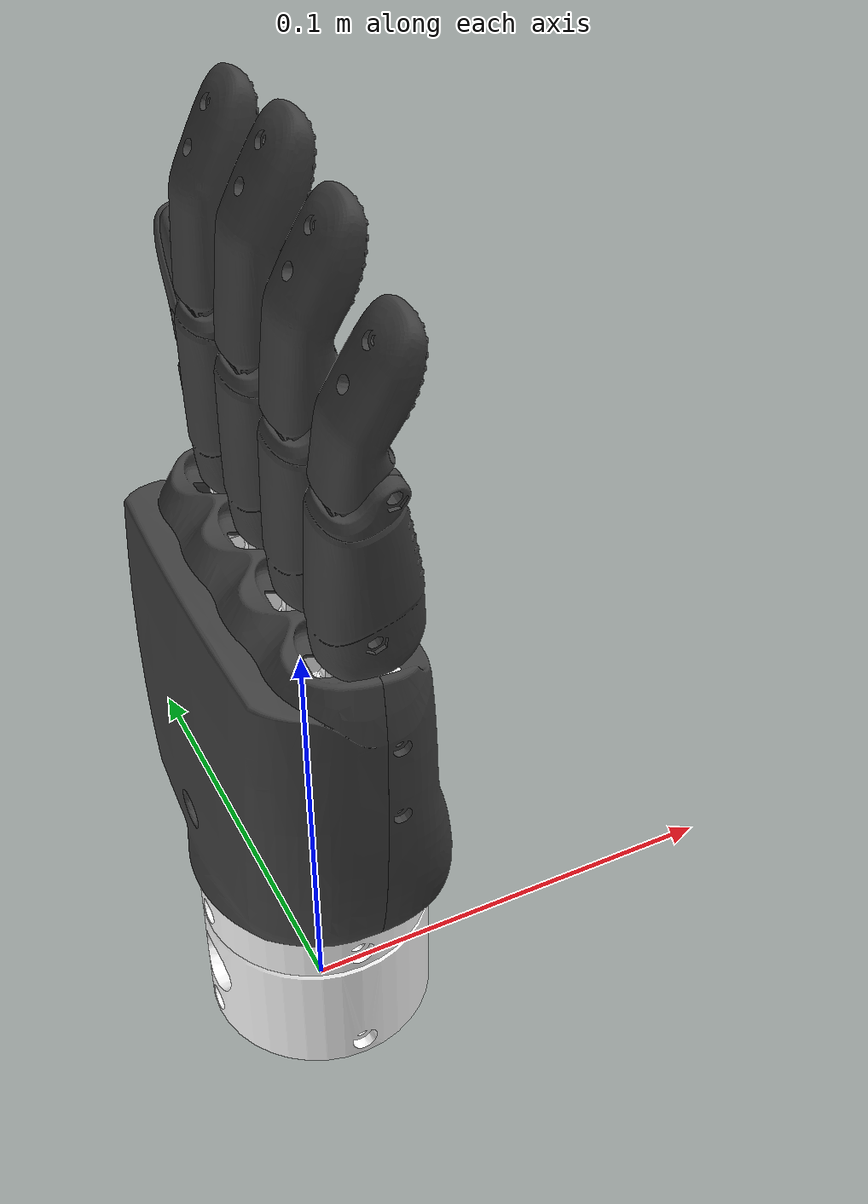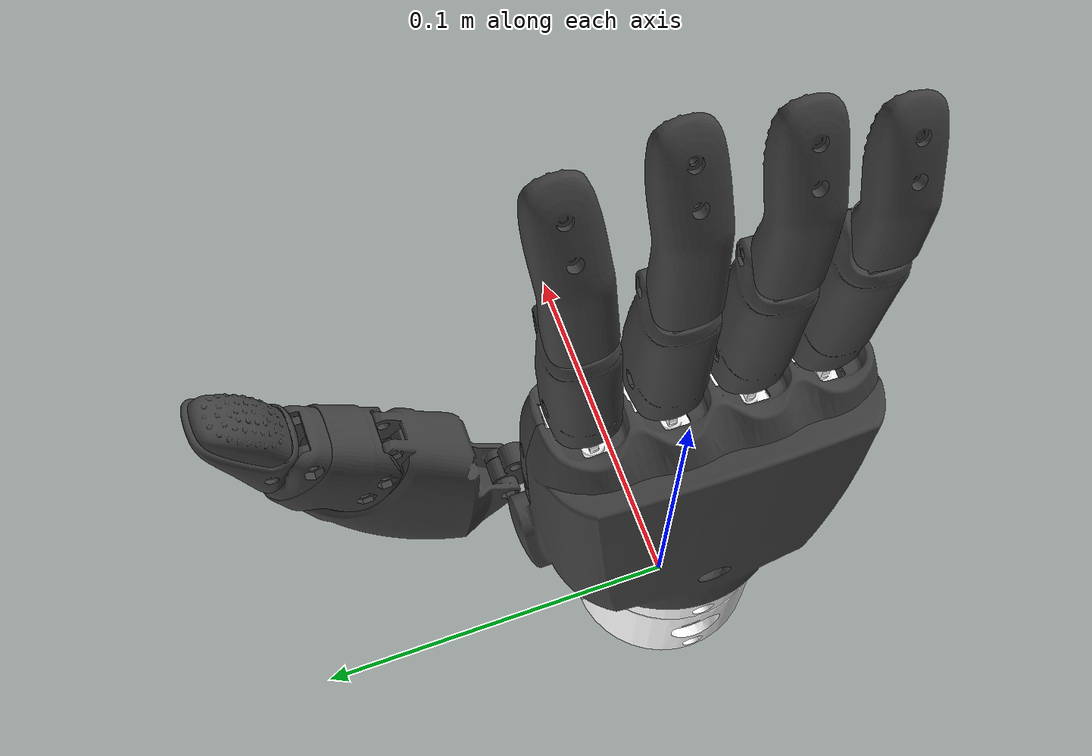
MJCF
<mujoco model="inspire_rh56f1_right">
  <compiler angle="radian" meshdir="assets_right" autolimits="true"/>

  <asset>
    <mesh file="base_link.obj"/>
    <mesh file="palm_1.obj"/>
    <mesh file="palm_2.obj"/>
    <mesh file="palm_2_collision_0.obj"/>
    <mesh file="palm_2_collision_1.obj"/>
    <mesh file="palm_2_collision_2.obj"/>
    <mesh file="palm_2_collision_3.obj"/>
    <mesh file="palm_2_collision_4.obj"/>
    <mesh file="palm_2_collision_5.obj"/>
    <mesh file="palm_2_collision_6.obj"/>
    <mesh file="palm_2_collision_7.obj"/>
    <mesh file="palm_2_collision_8.obj"/>
    <mesh file="palm_2_collision_9.obj"/>
    <mesh file="palm_2_collision_10.obj"/>
    <mesh file="palm_2_collision_11.obj"/>
    <mesh file="palm_2_collision_12.obj"/>
    <mesh file="palm_2_collision_13.obj"/>
    <mesh file="palm_2_collision_14.obj"/>
    <mesh file="palm_2_collision_15.obj"/>
    <mesh file="palm_2_collision_16.obj"/>
    <mesh file="palm_2_collision_17.obj"/>
    <mesh file="palm_2_collision_18.obj"/>
    <mesh file="palm_2_collision_19.obj"/>
    <mesh file="palm_2_collision_20.obj"/>
    <mesh file="palm_2_collision_21.obj"/>
    <mesh file="palm_2_collision_22.obj"/>
    <mesh file="palm_2_collision_23.obj"/>
    <mesh file="palm_2_collision_24.obj"/>
    <mesh file="palm_2_collision_25.obj"/>
    <mesh file="palm_2_collision_26.obj"/>
    <mesh file="palm_2_collision_27.obj"/>
    <mesh file="palm_2_collision_28.obj"/>
    <mesh file="palm_2_collision_29.obj"/>
    <mesh file="palm_2_collision_30.obj"/>
    <mesh file="palm_2_collision_31.obj"/>
    <mesh file="palm_2_collision_32.obj"/>
    <mesh file="palm_2_collision_33.obj"/>
    <mesh file="palm_2_collision_34.obj"/>
    <mesh file="palm_2_collision_35.obj"/>
    <mesh file="palm_2_collision_36.obj"/>
    <mesh file="palm_2_collision_37.obj"/>
    <mesh file="palm_2_collision_38.obj"/>
    <mesh file="palm_2_collision_39.obj"/>
    <mesh file="palm_2_collision_40.obj"/>
    <mesh file="palm_2_collision_41.obj"/>
    <mesh file="palm_2_collision_42.obj"/>
    <mesh file="palm_2_collision_43.obj"/>
    <mesh file="palm_2_collision_44.obj"/>
    <mesh file="palm_2_collision_45.obj"/>
    <mesh file="palm_2_collision_46.obj"/>
    <mesh file="palm_2_collision_47.obj"/>
    <mesh file="palm_2_collision_48.obj"/>
    <mesh file="palm_2_collision_49.obj"/>
    <mesh file="palm_2_collision_50.obj"/>
    <mesh file="palm_2_collision_51.obj"/>
    <mesh file="palm_2_collision_52.obj"/>
    <mesh file="palm_2_collision_53.obj"/>
    <mesh file="palm_2_collision_54.obj"/>
    <mesh file="palm_2_collision_55.obj"/>
    <mesh file="palm_2_collision_56.obj"/>
    <mesh file="palm_2_collision_57.obj"/>
    <mesh file="palm_2_collision_58.obj"/>
    <mesh file="palm_2_collision_59.obj"/>
    <mesh file="palm_2_collision_60.obj"/>
    <mesh file="palm_2_collision_61.obj"/>
    <mesh file="palm_2_collision_62.obj"/>
    <mesh file="palm_2_collision_63.obj"/>
    <mesh file="palm_2_collision_64.obj"/>
    <mesh file="palm_2_collision_65.obj"/>
    <mesh file="palm_2_collision_66.obj"/>
    <mesh file="palm_2_collision_67.obj"/>
    <mesh file="palm_2_collision_68.obj"/>
    <mesh file="palm_2_collision_69.obj"/>
    <mesh file="palm_2_collision_70.obj"/>
    <mesh file="palm_2_collision_71.obj"/>
    <mesh file="palm_2_collision_72.obj"/>
    <mesh file="palm_2_collision_73.obj"/>
    <mesh file="palm_2_collision_74.obj"/>
    <mesh file="palm_2_collision_75.obj"/>
    <mesh file="palm_2_collision_76.obj"/>
    <mesh file="palm_2_collision_77.obj"/>
    <mesh file="palm_2_collision_78.obj"/>
    <mesh file="palm_2_collision_79.obj"/>
    <mesh file="palm_2_collision_80.obj"/>
    <mesh file="palm_2_collision_81.obj"/>
    <mesh file="palm_2_collision_82.obj"/>
    <mesh file="palm_2_collision_83.obj"/>
    <mesh file="palm_2_collision_84.obj"/>
    <mesh file="palm_2_collision_85.obj"/>
    <mesh file="palm_2_collision_86.obj"/>
    <mesh file="palm_2_collision_87.obj"/>
    <mesh file="palm_2_collision_88.obj"/>
    <mesh file="palm_2_collision_89.obj"/>
    <mesh file="palm_2_collision_90.obj"/>
    <mesh file="palm_2_collision_91.obj"/>
    <mesh file="palm_2_collision_92.obj"/>
    <mesh file="palm_2_collision_93.obj"/>
    <mesh file="palm_2_collision_94.obj"/>
    <mesh file="palm_2_collision_95.obj"/>
    <mesh file="palm_2_collision_96.obj"/>
    <mesh file="palm_2_collision_97.obj"/>
    <mesh file="palm_2_collision_98.obj"/>
    <mesh file="palm_2_collision_99.obj"/>
    <mesh file="palm_2_collision_100.obj"/>
    <mesh file="palm_2_collision_101.obj"/>
    <mesh file="palm_2_collision_102.obj"/>
    <mesh file="palm_2_collision_103.obj"/>
    <mesh file="palm_2_collision_104.obj"/>
    <mesh file="palm_2_collision_105.obj"/>
    <mesh file="palm_2_collision_106.obj"/>
    <mesh file="palm_2_collision_107.obj"/>
    <mesh file="palm_2_collision_108.obj"/>
    <mesh file="palm_2_collision_109.obj"/>
    <mesh file="palm_2_collision_110.obj"/>
    <mesh file="palm_2_collision_111.obj"/>
    <mesh file="palm_2_collision_112.obj"/>
    <mesh file="palm_2_collision_113.obj"/>
    <mesh file="palm_2_collision_114.obj"/>
    <mesh file="palm_2_collision_115.obj"/>
    <mesh file="palm_2_collision_116.obj"/>
    <mesh file="palm_2_collision_117.obj"/>
    <mesh file="palm_2_collision_118.obj"/>
    <mesh file="palm_2_collision_119.obj"/>
    <mesh file="palm_2_collision_120.obj"/>
    <mesh file="palm_2_collision_121.obj"/>
    <mesh file="palm_2_collision_122.obj"/>
    <mesh file="palm_2_collision_123.obj"/>
    <mesh file="palm_2_collision_124.obj"/>
    <mesh file="palm_2_collision_125.obj"/>
    <mesh file="palm_2_collision_126.obj"/>
    <mesh file="palm_2_collision_127.obj"/>
    <mesh file="palm_2_collision_128.obj"/>
    <mesh file="palm_2_collision_129.obj"/>
    <mesh file="palm_2_collision_130.obj"/>
    <mesh file="palm_2_collision_131.obj"/>
    <mesh file="palm_2_collision_132.obj"/>
    <mesh file="palm_2_collision_133.obj"/>
    <mesh file="palm_2_collision_134.obj"/>
    <mesh file="palm_2_collision_135.obj"/>
    <mesh file="palm_2_collision_136.obj"/>
    <mesh file="palm_2_collision_137.obj"/>
    <mesh file="palm_2_collision_138.obj"/>
    <mesh file="palm_2_collision_139.obj"/>
    <mesh file="palm_3.obj"/>
    <mesh file="thumb_1.obj"/>
    <mesh file="thumb_2.obj"/>
    <mesh file="thumb_3.obj"/>
    <mesh file="thumb_4.obj"/>
    <mesh file="index_1.obj"/>
    <mesh file="index_2.obj"/>
    <mesh file="index_2_collision_0.obj"/>
    <mesh file="index_2_collision_1.obj"/>
    <mesh file="index_2_collision_2.obj"/>
    <mesh file="index_2_collision_3.obj"/>
    <mesh file="index_2_collision_4.obj"/>
    <mesh file="index_2_collision_5.obj"/>
    <mesh file="index_2_collision_6.obj"/>
    <mesh file="index_2_collision_7.obj"/>
    <mesh file="index_2_collision_8.obj"/>
    <mesh file="index_2_collision_9.obj"/>
    <mesh file="index_2_collision_10.obj"/>
    <mesh file="index_2_collision_11.obj"/>
    <mesh file="index_2_collision_12.obj"/>
    <mesh file="index_2_collision_13.obj"/>
    <mesh file="index_2_collision_14.obj"/>
    <mesh file="index_2_collision_15.obj"/>
    <mesh file="index_2_collision_16.obj"/>
    <mesh file="index_2_collision_17.obj"/>
    <mesh file="index_2_collision_18.obj"/>
    <mesh file="index_2_collision_19.obj"/>
    <mesh file="index_2_collision_20.obj"/>
    <mesh file="index_2_collision_21.obj"/>
    <mesh file="middle_1.obj"/>
    <mesh file="middle_2.obj"/>
    <mesh file="middle_2_collision_0.obj"/>
    <mesh file="middle_2_collision_1.obj"/>
    <mesh file="middle_2_collision_2.obj"/>
    <mesh file="middle_2_collision_3.obj"/>
    <mesh file="middle_2_collision_4.obj"/>
    <mesh file="middle_2_collision_5.obj"/>
    <mesh file="middle_2_collision_6.obj"/>
    <mesh file="middle_2_collision_7.obj"/>
    <mesh file="middle_2_collision_8.obj"/>
    <mesh file="middle_2_collision_9.obj"/>
    <mesh file="middle_2_collision_10.obj"/>
    <mesh file="middle_2_collision_11.obj"/>
    <mesh file="middle_2_collision_12.obj"/>
    <mesh file="middle_2_collision_13.obj"/>
    <mesh file="ring_1.obj"/>
    <mesh file="ring_2.obj"/>
    <mesh file="ring_2_collision_0.obj"/>
    <mesh file="ring_2_collision_1.obj"/>
    <mesh file="ring_2_collision_2.obj"/>
    <mesh file="ring_2_collision_3.obj"/>
    <mesh file="ring_2_collision_4.obj"/>
    <mesh file="ring_2_collision_5.obj"/>
    <mesh file="ring_2_collision_6.obj"/>
    <mesh file="ring_2_collision_7.obj"/>
    <mesh file="ring_2_collision_8.obj"/>
    <mesh file="ring_2_collision_9.obj"/>
    <mesh file="ring_2_collision_10.obj"/>
    <mesh file="ring_2_collision_11.obj"/>
    <mesh file="ring_2_collision_12.obj"/>
    <mesh file="ring_2_collision_13.obj"/>
    <mesh file="ring_2_collision_14.obj"/>
    <mesh file="ring_2_collision_15.obj"/>
    <mesh file="little_1.obj"/>
    <mesh file="little_2.obj"/>
    <mesh file="little_2_collision_0.obj"/>
    <mesh file="little_2_collision_1.obj"/>
    <mesh file="little_2_collision_2.obj"/>
    <mesh file="little_2_collision_3.obj"/>
    <mesh file="little_2_collision_4.obj"/>
    <mesh file="little_2_collision_5.obj"/>
    <mesh file="little_2_collision_6.obj"/>
    <mesh file="little_2_collision_7.obj"/>
    <mesh file="little_2_collision_8.obj"/>
    <mesh file="little_2_collision_9.obj"/>
    <mesh file="little_2_collision_10.obj"/>
    <mesh file="little_2_collision_11.obj"/>
    <mesh file="little_2_collision_12.obj"/>
    <mesh file="little_2_collision_13.obj"/>
    <mesh file="little_2_collision_14.obj"/>
    <mesh file="little_2_collision_15.obj"/>
    <mesh file="little_2_collision_16.obj"/>
    <mesh file="little_2_collision_17.obj"/>
    <mesh file="little_2_collision_18.obj"/>
    <mesh file="little_2_collision_19.obj"/>
    <mesh file="little_2_collision_20.obj"/>
    <mesh file="little_2_collision_21.obj"/>
    <mesh file="little_2_collision_22.obj"/>
    <mesh file="little_2_collision_23.obj"/>
    <mesh file="little_2_collision_24.obj"/>
    <mesh file="little_2_collision_25.obj"/>
    <mesh file="little_2_collision_26.obj"/>
    <mesh file="little_2_collision_27.obj"/>
    <mesh file="little_2_collision_28.obj"/>
    <mesh file="little_2_collision_29.obj"/>
    <mesh file="little_2_collision_30.obj"/>

    <mesh file="palm_tactile_sensor.obj"/>
  </asset>

  <default>
    <default class="inspire_rh56f1_right">
      <default class="visual">
        <geom type="mesh" contype="0" conaffinity="0" group="2" rgba="0.25 0.25 0.25 1" mass="0"/>
      </default>

      <default class="collision">
        <geom type="mesh" group="3" rgba="0.25 0.25 0.25 1"/>
      </default>

      <default class="joint">
        <joint axis="0 0 -1" armature="0.001" damping="0.05" frictionloss="0.001"/>
        <default class="thumb_1">
          <joint range="0 2.0944"/>
          <position ctrlrange="0 2.0944"/>
        </default>
        <default class="thumb_2">
          <joint range="0 0.4746"/>
          <position ctrlrange="0 0.4746"/>
        </default>
        <default class="thumb_3">
          <joint range="0 3.14"/>
        </default>
        <default class="thumb_4">
          <joint range="0 3.14"/>
        </default>
        <default class="finger_1">
          <joint range="0 1.5286"/>
          <position ctrlrange="0 1.5286"/>
        </default>
        <default class="finger_2">
          <joint range="0 3.14"/>
        </default>
      </default>
    </default>
  </default>

  <worldbody>
    <body name="base_link" childclass="inspire_rh56f1_right">
      <geom rgba="1 1 1 1" mesh="base_link" class="visual"/>
      <geom rgba="1 1 1 1" mesh="base_link" class="collision"/>
      <body name="palm" pos="0 0 0.0305">
        <geom rgba="1 1 1 1" mesh="palm_1" class="visual"/>
        <geom mesh="palm_2" class="visual"/>
        <geom mesh="palm_2_collision_0" rgba="0.53129386050689 0.5716681792462678 0.9470538247113056 1" class="collision"/>
        <geom mesh="palm_2_collision_1" rgba="0.9946109702755815 0.4743718510797166 0.7119061232970161 1" class="collision"/>
        <geom mesh="palm_2_collision_2" rgba="0.9795013237808604 0.9539852532779775 0.9319015202635609 1" class="collision"/>
        <geom mesh="palm_2_collision_3" rgba="0.6444442823520664 0.27518428452423793 0.7459707724311025 1" class="collision"/>
        <geom mesh="palm_2_collision_4" rgba="0.3063810211781085 0.9136101304568274 0.49891000574431155 1" class="collision"/>
        <geom mesh="palm_2_collision_5" rgba="0.763792411309999 0.8880960641049805 0.39212713240970387 1" class="collision"/>
        <geom mesh="palm_2_collision_6" rgba="0.5639046621164997 0.38122457513938746 0.0207956966480366 1" class="collision"/>
        <geom mesh="palm_2_collision_7" rgba="0.8336362784517162 0.7880855989800926 0.40319944814299447 1" class="collision"/>
        <geom mesh="palm_2_collision_8" rgba="0.5450043888963427 0.47268997148672176 0.6269888035284307 1" class="collision"/>
        <geom mesh="palm_2_collision_9" rgba="0.6610813592186654 0.8827519180513308 0.3008988507542991 1" class="collision"/>
        <geom mesh="palm_2_collision_10" rgba="0.31055101469043167 0.5890960262075949 0.7377438142728998 1" class="collision"/>
        <geom mesh="palm_2_collision_11" rgba="0.8207213091672094 0.32727851212756076 0.40644489731950706 1" class="collision"/>
        <geom mesh="palm_2_collision_12" rgba="0.13191323980439973 0.789873798285684 0.49311612209167177 1" class="collision"/>
        <geom mesh="palm_2_collision_13" rgba="0.7079437424040707 0.14187317860461113 0.7621141612830714 1" class="collision"/>
        <geom mesh="palm_2_collision_14" rgba="0.5867999950601747 0.813851077136006 0.37510520864045305 1" class="collision"/>
        <geom mesh="palm_2_collision_15" rgba="0.3139228237698559 0.46692938781341486 0.9873365448704924 1" class="collision"/>
        <geom mesh="palm_2_collision_16" rgba="0.9867021514601257 0.23170737865211655 0.4130948855406409 1" class="collision"/>
        <geom mesh="palm_2_collision_17" rgba="0.9693051500463475 0.6960026811280428 0.7689776907752786 1" class="collision"/>
        <geom mesh="palm_2_collision_18" rgba="0.5719946157230056 0.5048812711084932 0.5845482134640838 1" class="collision"/>
        <geom mesh="palm_2_collision_19" rgba="0.45698250411101227 0.9005281217929337 0.46942372903613605 1" class="collision"/>
        <geom mesh="palm_2_collision_20" rgba="0.2633167274432079 0.7386319660799241 0.02732765084636013 1" class="collision"/>
        <geom mesh="palm_2_collision_21" rgba="0.6960189096146117 0.7237668245003199 0.2240471050892371 1" class="collision"/>
        <geom mesh="palm_2_collision_22" rgba="0.5722589842899469 0.6194082545335894 0.6359617821158396 1" class="collision"/>
        <geom mesh="palm_2_collision_23" rgba="0.9853465750324996 0.8407947134564738 0.6811419559912821 1" class="collision"/>
        <geom mesh="palm_2_collision_24" rgba="0.5172165125202536 0.7303074820758052 0.10969685481961877 1" class="collision"/>
        <geom mesh="palm_2_collision_25" rgba="0.2182315914763182 0.6557438461363624 0.8341287842958396 1" class="collision"/>
        <geom mesh="palm_2_collision_26" rgba="0.5797246549748435 0.8092115475003474 0.8702794147557593 1" class="collision"/>
        <geom mesh="palm_2_collision_27" rgba="0.6593731960642742 0.9718601672326511 0.47160927118560125 1" class="collision"/>
        <geom mesh="palm_2_collision_28" rgba="0.3663882786032361 0.01562028872115806 0.4623378017380605 1" class="collision"/>
        <geom mesh="palm_2_collision_29" rgba="0.9839454852013269 0.946308510025405 0.4879134556606719 1" class="collision"/>
        <geom mesh="palm_2_collision_30" rgba="0.8466038743712014 0.8648780648138343 0.21968684849813913 1" class="collision"/>
        <geom mesh="palm_2_collision_31" rgba="0.29231546918608875 0.2473452292288144 0.618159817811328 1" class="collision"/>
        <geom mesh="palm_2_collision_32" rgba="0.8626444497255571 0.542863622308223 0.08088686502302667 1" class="collision"/>
        <geom mesh="palm_2_collision_33" rgba="0.10831527014250197 0.8670333929444878 0.9181076780602045 1" class="collision"/>
        <geom mesh="palm_2_collision_34" rgba="0.532034994082344 0.9733530999585865 0.2085737383773415 1" class="collision"/>
        <geom mesh="palm_2_collision_35" rgba="0.5226889371639327 0.06180811195231739 0.3595036720542091 1" class="collision"/>
        <geom mesh="palm_2_collision_36" rgba="0.3008421384281199 0.7364364818562941 0.41485109138235066 1" class="collision"/>
        <geom mesh="palm_2_collision_37" rgba="0.18442426136258105 0.5172634974080579 0.6685499899203422 1" class="collision"/>
        <geom mesh="palm_2_collision_38" rgba="0.8176198252853397 0.6977240320951165 0.5600984583734133 1" class="collision"/>
        <geom mesh="palm_2_collision_39" rgba="0.2708620708875469 0.4181593963192125 0.01055522626266625 1" class="collision"/>
        <geom mesh="palm_2_collision_40" rgba="0.6956716489722737 0.7565577149434193 0.737665538711022 1" class="collision"/>
        <geom mesh="palm_2_collision_41" rgba="0.9445770161344781 0.7218262588833063 0.26775536211638373 1" class="collision"/>
        <geom mesh="palm_2_collision_42" rgba="0.7780990349302372 0.6462872426777134 0.26860514362499244 1" class="collision"/>
        <geom mesh="palm_2_collision_43" rgba="0.7917398900958935 0.25010558575281505 0.14833060504833318 1" class="collision"/>
        <geom mesh="palm_2_collision_44" rgba="0.5509147108838697 0.6502344762070549 0.6374831193861326 1" class="collision"/>
        <geom mesh="palm_2_collision_45" rgba="0.1337303795732716 0.6607743739621895 0.84657309154359 1" class="collision"/>
        <geom mesh="palm_2_collision_46" rgba="0.10480667258671938 0.4865234101298732 0.8082586839115697 1" class="collision"/>
        <geom mesh="palm_2_collision_47" rgba="0.715556518221368 0.5733292224765753 0.3877220007846708 1" class="collision"/>
        <geom mesh="palm_2_collision_48" rgba="0.3870113885645179 0.6838691582897539 0.01578287710698778 1" class="collision"/>
        <geom mesh="palm_2_collision_49" rgba="0.6882048621158414 0.9144228428224087 0.40398747473431307 1" class="collision"/>
        <geom mesh="palm_2_collision_50" rgba="0.6784591411400221 0.37588128770361906 0.5699008801775229 1" class="collision"/>
        <geom mesh="palm_2_collision_51" rgba="0.2782297224532799 0.3208367302263214 0.30583563975415895 1" class="collision"/>
        <geom mesh="palm_2_collision_52" rgba="0.09195501787673466 0.006725856139559561 0.9961284900860865 1" class="collision"/>
        <geom mesh="palm_2_collision_53" rgba="0.1271113808806762 0.17596677996170562 0.17819722986046793 1" class="collision"/>
        <geom mesh="palm_2_collision_54" rgba="0.5595681644991569 0.809450054098359 0.7669325932422102 1" class="collision"/>
        <geom mesh="palm_2_collision_55" rgba="0.7902278777994041 0.7720350954915668 0.7677405528899053 1" class="collision"/>
        <geom mesh="palm_2_collision_56" rgba="0.26147245258890983 0.9226621356676422 0.4810145362845444 1" class="collision"/>
        <geom mesh="palm_2_collision_57" rgba="0.4959761676712796 0.5073434451768093 0.9266588076128244 1" class="collision"/>
        <geom mesh="palm_2_collision_58" rgba="0.8008186923335728 0.3473010917445182 0.13095012851923238 1" class="collision"/>
        <geom mesh="palm_2_collision_59" rgba="0.541413984928003 0.8145258749368433 0.8142162197012548 1" class="collision"/>
        <geom mesh="palm_2_collision_60" rgba="0.004956863969954983 0.7648117363419262 0.19251082949867215 1" class="collision"/>
        <geom mesh="palm_2_collision_61" rgba="0.6808581681077019 0.42566308379197937 0.20068900111865984 1" class="collision"/>
        <geom mesh="palm_2_collision_62" rgba="0.25180936016163646 0.2323125734953575 0.7994618913742648 1" class="collision"/>
        <geom mesh="palm_2_collision_63" rgba="0.7252430664188834 0.23403199959752097 0.0979392281971051 1" class="collision"/>
        <geom mesh="palm_2_collision_64" rgba="0.09215336384390538 0.889982803551278 0.048042186866950276 1" class="collision"/>
        <geom mesh="palm_2_collision_65" rgba="0.5465299547477636 0.6913685562450098 0.13125288795800505 1" class="collision"/>
        <geom mesh="palm_2_collision_66" rgba="0.0357551649461465 0.5737104077688058 0.30837602727649904 1" class="collision"/>
        <geom mesh="palm_2_collision_67" rgba="0.3299638239365916 0.22623845034742596 0.895214406038438 1" class="collision"/>
        <geom mesh="palm_2_collision_68" rgba="0.5609151601159764 0.7429330476285874 0.03391764534830821 1" class="collision"/>
        <geom mesh="palm_2_collision_69" rgba="0.6422135216943534 0.04903842080159915 0.3385237954819923 1" class="collision"/>
        <geom mesh="palm_2_collision_70" rgba="0.806804612154301 0.9068367338465418 0.5062170676080723 1" class="collision"/>
        <geom mesh="palm_2_collision_71" rgba="0.4997804107730862 0.06505222359611074 0.20512639007059263 1" class="collision"/>
        <geom mesh="palm_2_collision_72" rgba="0.20651447702907866 0.24073965204017578 0.295831747634403 1" class="collision"/>
        <geom mesh="palm_2_collision_73" rgba="0.09158916165614228 0.10613880043164137 0.030441023711735182 1" class="collision"/>
        <geom mesh="palm_2_collision_74" rgba="0.2814367003150249 0.7416488680933744 0.6546637767401324 1" class="collision"/>
        <geom mesh="palm_2_collision_75" rgba="0.01908028238829962 0.5310434782180115 0.7346638132263997 1" class="collision"/>
        <geom mesh="palm_2_collision_76" rgba="0.545589268913536 0.4004521455935248 0.20275172056430135 1" class="collision"/>
        <geom mesh="palm_2_collision_77" rgba="0.47653109174812636 0.9916659969706202 0.036539329684545874 1" class="collision"/>
        <geom mesh="palm_2_collision_78" rgba="0.34788558460555963 0.7682129774746059 0.6814493392046025 1" class="collision"/>
        <geom mesh="palm_2_collision_79" rgba="0.13499093363563874 0.4618775975263093 0.8063250137782311 1" class="collision"/>
        <geom mesh="palm_2_collision_80" rgba="0.8213757655003305 0.7368135103273871 0.13586035974514699 1" class="collision"/>
        <geom mesh="palm_2_collision_81" rgba="0.05893909088706051 0.42989732250214463 0.6899637901666651 1" class="collision"/>
        <geom mesh="palm_2_collision_82" rgba="0.8331881468371041 0.987583913155954 0.7445241690982145 1" class="collision"/>
        <geom mesh="palm_2_collision_83" rgba="0.4395752459102136 0.9920905541463523 0.344369534014789 1" class="collision"/>
        <geom mesh="palm_2_collision_84" rgba="0.9149255302391182 0.5039005877667206 0.3060956078968634 1" class="collision"/>
        <geom mesh="palm_2_collision_85" rgba="0.225583181239429 0.8341162270195889 0.9703953801142671 1" class="collision"/>
        <geom mesh="palm_2_collision_86" rgba="0.615094671562363 0.2732466842890904 0.5046867999634305 1" class="collision"/>
        <geom mesh="palm_2_collision_87" rgba="0.23949868731115342 0.722176084360565 0.5217382097869202 1" class="collision"/>
        <geom mesh="palm_2_collision_88" rgba="0.450861083558297 0.41944494059081716 0.09988695148936699 1" class="collision"/>
        <geom mesh="palm_2_collision_89" rgba="0.3762344239841402 0.3726127799940152 0.3166347996352483 1" class="collision"/>
        <geom mesh="palm_2_collision_90" rgba="0.6721827338076949 0.2914524842093972 0.8145617203972099 1" class="collision"/>
        <geom mesh="palm_2_collision_91" rgba="0.2067624532297403 0.5312650000732291 0.2496845713473821 1" class="collision"/>
        <geom mesh="palm_2_collision_92" rgba="0.48085630029941795 2.9686502738823783e-05 0.9437780554061853 1" class="collision"/>
        <geom mesh="palm_2_collision_93" rgba="0.6658867360380083 0.4885475870743504 0.04144459269928613 1" class="collision"/>
        <geom mesh="palm_2_collision_94" rgba="0.994608430449147 0.25086077694273734 0.2350804836066438 1" class="collision"/>
        <geom mesh="palm_2_collision_95" rgba="0.4403258424184884 0.8755436128777246 0.8270787389530929 1" class="collision"/>
        <geom mesh="palm_2_collision_96" rgba="0.01582677659841858 0.5303601351797746 0.9585348360320572 1" class="collision"/>
        <geom mesh="palm_2_collision_97" rgba="0.8639944481120565 0.23973830656990214 0.4500821781336086 1" class="collision"/>
        <geom mesh="palm_2_collision_98" rgba="0.5608624962168071 0.5358356620669036 0.27139946868281517 1" class="collision"/>
        <geom mesh="palm_2_collision_99" rgba="0.24163850317923474 0.5181035633204906 0.5805796246537543 1" class="collision"/>
        <geom mesh="palm_2_collision_100" rgba="0.5091587152937533 0.9739213026223812 0.032881146330098865 1" class="collision"/>
        <geom mesh="palm_2_collision_101" rgba="0.5283530948137501 0.39637524596299967 0.7911998699419563 1" class="collision"/>
        <geom mesh="palm_2_collision_102" rgba="0.4563207029792409 0.56023367832203 0.5377764835649567 1" class="collision"/>
        <geom mesh="palm_2_collision_103" rgba="0.2015035887585226 0.3956954183377206 0.4913918519939058 1" class="collision"/>
        <geom mesh="palm_2_collision_104" rgba="0.1533565943539299 0.9232089953028826 0.5668235879489607 1" class="collision"/>
        <geom mesh="palm_2_collision_105" rgba="0.7116320795125529 0.5885255710644526 0.543454380165237 1" class="collision"/>
        <geom mesh="palm_2_collision_106" rgba="0.5223606870433063 0.7958631617377325 0.48020154421675965 1" class="collision"/>
        <geom mesh="palm_2_collision_107" rgba="0.6828419616069153 0.5309273814175535 0.17019913538475384 1" class="collision"/>
        <geom mesh="palm_2_collision_108" rgba="0.814126997003133 0.11202237116805858 0.18256547377397891 1" class="collision"/>
        <geom mesh="palm_2_collision_109" rgba="0.7659701899311907 0.879586544673681 0.6673906450229025 1" class="collision"/>
        <geom mesh="palm_2_collision_110" rgba="0.8396264240036027 0.641125133982528 0.8365611658498522 1" class="collision"/>
        <geom mesh="palm_2_collision_111" rgba="0.9028828597094873 0.7899581208383176 0.6604453161967927 1" class="collision"/>
        <geom mesh="palm_2_collision_112" rgba="0.8440439012315617 0.3512192014819464 0.9578162359291684 1" class="collision"/>
        <geom mesh="palm_2_collision_113" rgba="0.22827020613124116 0.3840192434277102 0.8754668023928766 1" class="collision"/>
        <geom mesh="palm_2_collision_114" rgba="0.4677820612411655 0.47669214616964517 0.6030916910420527 1" class="collision"/>
        <geom mesh="palm_2_collision_115" rgba="0.5738957789777348 0.7818484610865792 0.7180286033775095 1" class="collision"/>
        <geom mesh="palm_2_collision_116" rgba="0.02438129948955492 0.3548228461171221 0.3468787042113455 1" class="collision"/>
        <geom mesh="palm_2_collision_117" rgba="0.019007136131651614 0.37700085822214613 0.9339552367269616 1" class="collision"/>
        <geom mesh="palm_2_collision_118" rgba="0.6205524755807764 0.7123373089746855 0.9142955977362422 1" class="collision"/>
        <geom mesh="palm_2_collision_119" rgba="0.5046631006850538 0.8599157145438319 0.3048602296464128 1" class="collision"/>
        <geom mesh="palm_2_collision_120" rgba="0.5150104831100054 0.9673929412920792 0.5237178699520177 1" class="collision"/>
        <geom mesh="palm_2_collision_121" rgba="0.25040564785112285 0.3036092644995043 0.5484964864783753 1" class="collision"/>
        <geom mesh="palm_2_collision_122" rgba="0.6994932562975424 0.9236363914115955 0.37908256341709234 1" class="collision"/>
        <geom mesh="palm_2_collision_123" rgba="0.25147840009860056 0.9689662485082642 0.19861223780491266 1" class="collision"/>
        <geom mesh="palm_2_collision_124" rgba="0.7671759194795884 0.6189820190458427 0.4252990102980324 1" class="collision"/>
        <geom mesh="palm_2_collision_125" rgba="0.0676229572688809 0.08624117557665611 0.7302986076293204 1" class="collision"/>
        <geom mesh="palm_2_collision_126" rgba="0.129734779816425 0.05621816129244739 0.5069713707250354 1" class="collision"/>
        <geom mesh="palm_2_collision_127" rgba="0.8891806972935911 0.17174919276132128 0.25713010402942704 1" class="collision"/>
        <geom mesh="palm_2_collision_128" rgba="0.7208011526544351 0.286785088644671 0.6831080771165964 1" class="collision"/>
        <geom mesh="palm_2_collision_129" rgba="0.6305136432407449 0.7697632390355991 0.6631443266786574 1" class="collision"/>
        <geom mesh="palm_2_collision_130" rgba="0.6364848731198656 0.27276377231590554 0.38048209600013283 1" class="collision"/>
        <geom mesh="palm_2_collision_131" rgba="0.9803656466155959 0.8846226165313327 0.5546345728898389 1" class="collision"/>
        <geom mesh="palm_2_collision_132" rgba="0.7095193091295584 0.8669527074473596 0.33976188231878435 1" class="collision"/>
        <geom mesh="palm_2_collision_133" rgba="0.5596549489922509 0.8939404723781468 0.19627414157871814 1" class="collision"/>
        <geom mesh="palm_2_collision_134" rgba="0.19516014186382602 0.33819764855791257 0.5527762152710884 1" class="collision"/>
        <geom mesh="palm_2_collision_135" rgba="0.9513951556467419 0.06785516753221255 0.395237829323962 1" class="collision"/>
        <geom mesh="palm_2_collision_136" rgba="0.09221246441959585 0.4524011714435906 0.18853190901283834 1" class="collision"/>
        <geom mesh="palm_2_collision_137" rgba="0.13788990545628133 0.8818873234605852 0.7520377064244747 1" class="collision"/>
        <geom mesh="palm_2_collision_138" rgba="0.9367427930883824 0.8332023396141088 0.8186536266885491 1" class="collision"/>
        <geom mesh="palm_2_collision_139" rgba="0.9879968817936166 0.3820591552255731 0.46332193303081926 1" class="collision"/>
        <geom mesh="palm_3" class="visual"/>
        <geom mesh="palm_3" class="collision"/>
      </body>
      <body name="thumb_1" pos="0.01836 0.027241 0.070511">
        <joint name="thumb_1_joint" class="thumb_1"/>
        <geom mesh="thumb_1" class="visual"/>
        <geom mesh="thumb_1" class="collision"/>
        <body name="thumb_2" pos="0.0047995 0.013396 -0.0052536" quat="0.500023 0.499975 -0.499977 -0.500025">
          <joint name="thumb_2_joint" class="thumb_2"/>
          <geom mesh="thumb_2" class="visual"/>
          <geom mesh="thumb_2" class="collision"/>
          <body name="thumb_3" pos="-0.029155 0.03869 -0.0032">
            <joint name="thumb_3_joint" class="thumb_3"/>
            <geom mesh="thumb_3" class="visual"/>
            <geom mesh="thumb_3" class="collision"/>
            <body name="thumb_4" pos="-0.01441 0.014648 0.0013">
              <joint name="thumb_4_joint" class="thumb_4"/>
              <geom name="thumb_4" mesh="thumb_4" class="visual"/>
              <geom mesh="thumb_4" class="collision"/>
            </body>
          </body>
        </body>
      </body>
      <body name="index_1" pos="0.00070751 0.034376 0.13554" quat="0.728374 0.685179 0 0">
        <joint name="index_1_joint" class="finger_1"/>
        <geom mesh="index_1" class="visual"/>
        <geom mesh="index_1" class="collision"/>
        <body name="index_2" pos="0.0031056 0.032854 0.001">
          <joint name="index_2_joint" class="finger_2"/>
          <geom name="index_2" mesh="index_2" class="visual"/>
          <geom mesh="index_2_collision_0" rgba="0.2804388564972933 0.6650728051616168 0.011786386643263924 1" class="collision"/>
          <geom mesh="index_2_collision_1" rgba="0.8093348425588405 0.3976990243845858 0.5480918179316278 1" class="collision"/>
          <geom mesh="index_2_collision_2" rgba="0.8396342473299595 0.8498890382585189 0.1824501582793786 1" class="collision"/>
          <geom mesh="index_2_collision_3" rgba="0.6334926114143917 0.22656867171230266 0.4733049980631666 1" class="collision"/>
          <geom mesh="index_2_collision_4" rgba="0.11479823103303144 0.9315842199125889 0.36948813721549445 1" class="collision"/>
          <geom mesh="index_2_collision_5" rgba="0.5615825010278404 0.8729883165030371 0.052006101400050575 1" class="collision"/>
          <geom mesh="index_2_collision_6" rgba="0.0637997204698143 0.6825558397146609 0.8503796260535482 1" class="collision"/>
          <geom mesh="index_2_collision_7" rgba="0.2905551954517144 0.5792967952019954 0.05325920098547354 1" class="collision"/>
          <geom mesh="index_2_collision_8" rgba="0.7398084066830906 0.4971740121273457 0.8955513216179902 1" class="collision"/>
          <geom mesh="index_2_collision_9" rgba="0.7388204628422776 0.4560274719199524 0.36261117634252416 1" class="collision"/>
          <geom mesh="index_2_collision_10" rgba="0.5136021279430092 0.18751335995741947 0.6970450809086787 1" class="collision"/>
          <geom mesh="index_2_collision_11" rgba="0.15874970592042648 0.8375484273038093 0.6695882302396862 1" class="collision"/>
          <geom mesh="index_2_collision_12" rgba="0.2340583268062254 0.8578796115395473 0.7325614418054835 1" class="collision"/>
          <geom mesh="index_2_collision_13" rgba="0.24024492165607514 0.41662290258121004 0.7923715527220547 1" class="collision"/>
          <geom mesh="index_2_collision_14" rgba="0.5089465321422417 0.0058987789293013515 0.489415483331203 1" class="collision"/>
          <geom mesh="index_2_collision_15" rgba="0.8164900934000812 0.8506606226888315 0.31947903061303184 1" class="collision"/>
          <geom mesh="index_2_collision_16" rgba="0.5386844592431276 0.9535463457358473 0.6333339974103999 1" class="collision"/>
          <geom mesh="index_2_collision_17" rgba="0.5092487763725683 0.6178881637863853 0.7899384485395702 1" class="collision"/>
          <geom mesh="index_2_collision_18" rgba="0.5931088826158193 0.15793888998895267 0.4871698099575803 1" class="collision"/>
          <geom mesh="index_2_collision_19" rgba="0.9760032414013594 0.054598664073658876 0.05590070612773046 1" class="collision"/>
          <geom mesh="index_2_collision_20" rgba="0.9279683927178546 0.4650221832507384 0.973037726467951 1" class="collision"/>
          <geom mesh="index_2_collision_21" rgba="0.7876590162525983 0.07686615644767847 0.2787885889154402 1" class="collision"/>
        </body>
      </body>
      <body name="middle_1" pos="0.00070746 0.015767 0.13648" quat="0.707105 0.707108 0 0">
        <joint name="middle_1_joint" class="finger_1"/>
        <geom mesh="middle_1" class="visual"/>
        <geom mesh="middle_1" class="collision"/>
        <body name="middle_2" pos="0.0031056 0.032854 0.001">
          <joint name="middle_2_joint" class="finger_2"/>
          <geom name="middle_2" mesh="middle_2" class="visual"/>
          <geom mesh="middle_2_collision_0" rgba="0.30677992183286795 0.12509979225151635 0.8891777678018064 1" class="collision"/>
          <geom mesh="middle_2_collision_1" rgba="0.7029718423793708 0.9153223557818481 0.9199988669383615 1" class="collision"/>
          <geom mesh="middle_2_collision_2" rgba="0.9110352409138878 0.5739534324741854 0.13955657518694398 1" class="collision"/>
          <geom mesh="middle_2_collision_3" rgba="0.6310597548794831 0.2468225447406256 0.09742491436641854 1" class="collision"/>
          <geom mesh="middle_2_collision_4" rgba="0.485134646384192 0.42876473394301495 0.9569369886333664 1" class="collision"/>
          <geom mesh="middle_2_collision_5" rgba="0.541130687199812 0.25094220799809686 0.5300500659417814 1" class="collision"/>
          <geom mesh="middle_2_collision_6" rgba="0.8032718770546284 0.7105315174170671 0.5217812121794809 1" class="collision"/>
          <geom mesh="middle_2_collision_7" rgba="0.7650907843175382 0.16208367254274558 0.5027236071074377 1" class="collision"/>
          <geom mesh="middle_2_collision_8" rgba="0.7718233670061931 0.7655781752670874 0.14942110369089212 1" class="collision"/>
          <geom mesh="middle_2_collision_9" rgba="0.34388531570585734 0.11106864860102705 0.677328626470191 1" class="collision"/>
          <geom mesh="middle_2_collision_10" rgba="0.9248083102386497 0.9770018997588942 0.7238324865927714 1" class="collision"/>
          <geom mesh="middle_2_collision_11" rgba="0.40978648834271236 0.08748229188187306 0.2467880522480107 1" class="collision"/>
          <geom mesh="middle_2_collision_12" rgba="0.8171308809251417 0.8331405216958979 0.0039460474485079056 1" class="collision"/>
          <geom mesh="middle_2_collision_13" rgba="0.22735798868143664 0.7038041887852627 0.9746833769149982 1" class="collision"/>
        </body>
      </body>
      <body name="ring_1" pos="0.00070746 -0.0030876 0.13643" quat="0.688339 0.725389 0 0">
        <joint name="ring_1_joint" class="finger_1"/>
        <geom mesh="ring_1" class="visual"/>
        <geom mesh="ring_1" class="collision"/>
        <body name="ring_2" pos="0.0031056 0.032854 0.001">
          <joint name="ring_2_joint" class="finger_2"/>
          <geom name="ring_2" mesh="ring_2" class="visual"/>
          <geom mesh="ring_2_collision_0" rgba="0.9460651313728737 0.6173514084728492 0.620678853537843 1" class="collision"/>
          <geom mesh="ring_2_collision_1" rgba="0.12134460984032769 0.3692107874830608 0.9966432147344285 1" class="collision"/>
          <geom mesh="ring_2_collision_2" rgba="0.9079708118688651 0.9236864938224828 0.05286958036149969 1" class="collision"/>
          <geom mesh="ring_2_collision_3" rgba="0.4982303421631177 0.2591343912822992 0.23247340296437602 1" class="collision"/>
          <geom mesh="ring_2_collision_4" rgba="0.25086409059639847 0.8864412023654135 0.4678143038884842 1" class="collision"/>
          <geom mesh="ring_2_collision_5" rgba="0.6373321945641542 0.6432171620051332 0.5558032909753178 1" class="collision"/>
          <geom mesh="ring_2_collision_6" rgba="0.5422155534251469 0.2528005374093357 0.9066838378919998 1" class="collision"/>
          <geom mesh="ring_2_collision_7" rgba="0.7019474019041023 0.5275740961482229 0.5957250490976846 1" class="collision"/>
          <geom mesh="ring_2_collision_8" rgba="0.754303177754829 0.025569895884187233 0.44147395532514677 1" class="collision"/>
          <geom mesh="ring_2_collision_9" rgba="0.6131704611565293 0.8092028742504365 0.8213352360825367 1" class="collision"/>
          <geom mesh="ring_2_collision_10" rgba="0.9467155234984252 0.5003180106796451 0.13202134206630134 1" class="collision"/>
          <geom mesh="ring_2_collision_11" rgba="0.978489904255995 0.6026160749182748 0.49690838601414 1" class="collision"/>
          <geom mesh="ring_2_collision_12" rgba="0.8800366188521613 0.9703709818427911 0.8017847538140377 1" class="collision"/>
          <geom mesh="ring_2_collision_13" rgba="0.7597676260204163 0.9892706463285016 0.7105997714778999 1" class="collision"/>
          <geom mesh="ring_2_collision_14" rgba="0.9510517961692969 0.5757346656794802 0.018116277677010517 1" class="collision"/>
          <geom mesh="ring_2_collision_15" rgba="0.6114282184493733 0.883371301358996 0.8287569163292899 1" class="collision"/>
        </body>
      </body>
      <body name="little_1" pos="0.00070753 -0.021451 0.13527" quat="0.669137 0.743139 0 0">
        <joint name="little_1_joint" class="finger_1"/>
        <geom mesh="little_1" class="visual"/>
        <geom mesh="little_1" class="collision"/>
        <body name="little_2" pos="0.0031057 0.032854 0.001">
          <joint name="little_2_joint" class="finger_2"/>
          <geom name="little_2" mesh="little_2" class="visual"/>
          <geom mesh="little_2_collision_0" rgba="0.07843024596694559 0.6601833319255886 0.3664216657822963 1" class="collision"/>
          <geom mesh="little_2_collision_1" rgba="0.2946666680432446 0.48324176750182046 0.6032926392422462 1" class="collision"/>
          <geom mesh="little_2_collision_2" rgba="0.5788897241620186 0.9982190594687674 0.15680428826426174 1" class="collision"/>
          <geom mesh="little_2_collision_3" rgba="0.6396866695100992 0.4656635402907301 0.8249206289053016 1" class="collision"/>
          <geom mesh="little_2_collision_4" rgba="0.7007282252193213 0.9656876895266465 0.9933341529186566 1" class="collision"/>
          <geom mesh="little_2_collision_5" rgba="0.6328563635594642 0.4419204347857676 0.792385036814895 1" class="collision"/>
          <geom mesh="little_2_collision_6" rgba="0.8604454331016748 0.9121435584890839 0.20780848860741608 1" class="collision"/>
          <geom mesh="little_2_collision_7" rgba="0.6063684409091838 0.1628035204069781 0.017508581377234878 1" class="collision"/>
          <geom mesh="little_2_collision_8" rgba="0.279891372111973 0.9786669199287504 0.17725252774935385 1" class="collision"/>
          <geom mesh="little_2_collision_9" rgba="0.5217188830326899 0.6783159036559253 0.49724460345422206 1" class="collision"/>
          <geom mesh="little_2_collision_10" rgba="0.4406599685677913 0.3740340245785232 0.5546712342999259 1" class="collision"/>
          <geom mesh="little_2_collision_11" rgba="0.4189271547556259 0.5363912626318816 0.3501594725121888 1" class="collision"/>
          <geom mesh="little_2_collision_12" rgba="0.541963928394478 0.5646186119601693 0.6490321264979839 1" class="collision"/>
          <geom mesh="little_2_collision_13" rgba="0.25462599426205257 0.7491740922874353 0.411063693558838 1" class="collision"/>
          <geom mesh="little_2_collision_14" rgba="0.08746326826034334 0.24780460040738395 0.7578473444150178 1" class="collision"/>
          <geom mesh="little_2_collision_15" rgba="0.3028313447662411 0.7090661872927098 0.013121634431925266 1" class="collision"/>
          <geom mesh="little_2_collision_16" rgba="0.05958336828324218 0.45775240205025214 0.20556176781576962 1" class="collision"/>
          <geom mesh="little_2_collision_17" rgba="0.8831217462557502 0.8672567622579652 0.2642802068685177 1" class="collision"/>
          <geom mesh="little_2_collision_18" rgba="0.8692664327411244 0.8378291142991046 0.6914221471242934 1" class="collision"/>
          <geom mesh="little_2_collision_19" rgba="0.6065105249549777 0.5862700259616758 0.389281747583056 1" class="collision"/>
          <geom mesh="little_2_collision_20" rgba="0.7005761771166494 0.39798061722406897 0.8858672661798787 1" class="collision"/>
          <geom mesh="little_2_collision_21" rgba="0.9108339804941066 0.557737331199082 0.004493369337381425 1" class="collision"/>
          <geom mesh="little_2_collision_22" rgba="0.40790965516326294 0.8903342248326233 0.8997263907236352 1" class="collision"/>
          <geom mesh="little_2_collision_23" rgba="0.03338725518441232 0.8792286082426655 0.8461578419613448 1" class="collision"/>
          <geom mesh="little_2_collision_24" rgba="0.6698636168737733 0.2705999660242988 0.06269604687764452 1" class="collision"/>
          <geom mesh="little_2_collision_25" rgba="0.4942518662711526 0.977364336281175 0.2033352124421094 1" class="collision"/>
          <geom mesh="little_2_collision_26" rgba="0.35425088392114157 0.8256519156375282 0.41383630368837254 1" class="collision"/>
          <geom mesh="little_2_collision_27" rgba="0.7483502564249903 0.5301146215520887 0.6614267623815924 1" class="collision"/>
          <geom mesh="little_2_collision_28" rgba="0.13230584146194913 0.8202809545236609 0.17094646226859944 1" class="collision"/>
          <geom mesh="little_2_collision_29" rgba="0.02065806173296736 0.126793332860635 0.17808731276809842 1" class="collision"/>
          <geom mesh="little_2_collision_30" rgba="0.10704296142919645 0.09969324933589518 0.158427921089753 1" class="collision"/>
        </body>
      </body>
    </body>
  </worldbody>

  <contact>
    <exclude body1="palm" body2="thumb_1"/>
    <exclude body1="palm" body2="index_1"/>
    <exclude body1="palm" body2="middle_1"/>
    <exclude body1="palm" body2="ring_1"/>
    <exclude body1="palm" body2="little_1"/>
  </contact>

  <equality>
    <joint joint1="thumb_3_joint" joint2="thumb_2_joint" polycoef="0 1.2953 0 0 0"/>
    <joint joint1="thumb_4_joint" joint2="thumb_2_joint" polycoef="0 1.16084786 0 0 0"/>
    <joint joint1="index_2_joint" joint2="index_1_joint" polycoef="0 1.1545 0 0 0"/>
    <joint joint1="middle_2_joint" joint2="middle_1_joint" polycoef="0 1.1545 0 0 0"/>
    <joint joint1="ring_2_joint" joint2="ring_1_joint" polycoef="0 1.1545 0 0 0"/>
    <joint joint1="little_2_joint" joint2="little_1_joint" polycoef="0 1.1545 0 0 0"/>
  </equality>

  <actuator>
    <position name="thumb_1" joint="thumb_1_joint" class="thumb_1"/>
    <position name="thumb_2" joint="thumb_2_joint" class="thumb_2"/>
    <position name="index" joint="index_1_joint" class="finger_1"/>
    <position name="middle" joint="middle_1_joint" class="finger_1"/>
    <position name="ring" joint="ring_1_joint" class="finger_1"/>
    <position name="little" joint="little_1_joint" class="finger_1"/>
  </actuator>
</mujoco>
